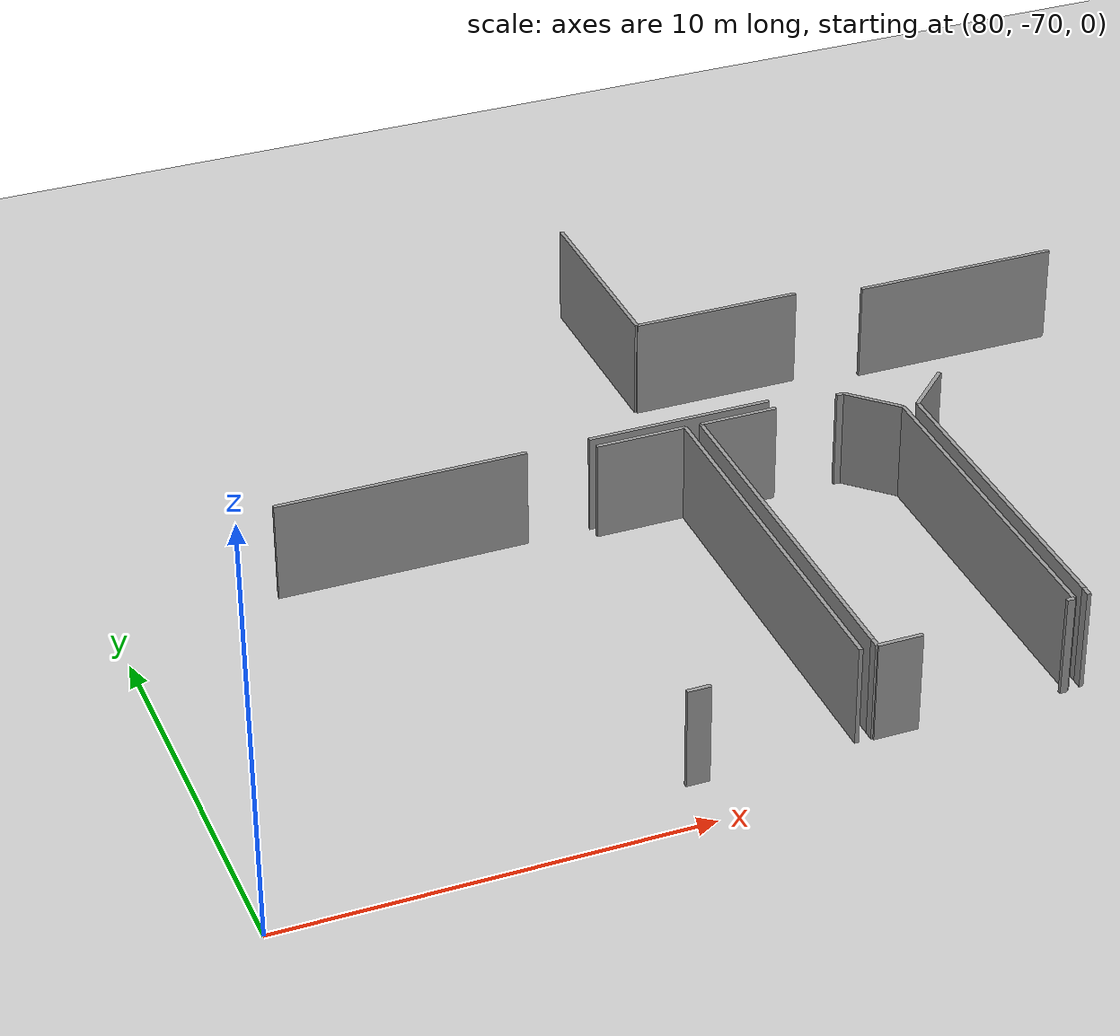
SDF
<sdf version="1.6">
 <world name="default">
  <model name="ground_plane">
   <static>1</static>
   <link name="link">
    <collision name="collision">
     <geometry><plane><normal>0 0 1</normal><size>100 100</size></plane></geometry>
     <surface><friction><ode><mu>100</mu><mu2>50</mu2></ode></friction></surface>
    </collision>
    <visual name="visual">
     <cast_shadows>0</cast_shadows>
     <geometry><plane><normal>0 0 1</normal><size>100 100</size></plane></geometry>
     <material>
      <script><uri>file://media/materials/scripts/gazebo.material</uri><name>Gazebo/Grey</name></script>
     </material>
    </visual>
   </link>
  </model>
  <model name="0510035520_A_40_1_103">
   <static>1</static>
   <link name="Wall_1003">
    <collision name="Wall_1003_Collision">
     <geometry><box><size>2.23805686512 0.1 2.5</size></box></geometry>
     <pose>1.11902843256 0 1.25 0 0 0</pose>
    </collision>
    <visual name="Wall_1003_Visual">
     <pose>1.11902843256 0 1.25 0 0 0</pose>
     <geometry><box><size>2.23805686512 0.1 2.5</size></box></geometry>
     <material>
      <script><uri>file://media/materials/scripts/gazebo.material</uri><name>Gazebo/Grey</name></script>
      <ambient>1 1 1 1</ambient>
     </material>
    </visual>
    <pose>203.845407072 -127.629139409 0 0 0 0.0</pose>
   </link>
   <link name="Wall_1004">
    <collision name="Wall_1004_Collision">
     <geometry><box><size>9.61262936149 0.1 2.5</size></box></geometry>
     <pose>4.80631468074 0 1.25 0 0 0</pose>
    </collision>
    <visual name="Wall_1004_Visual">
     <pose>4.80631468074 0 1.25 0 0 0</pose>
     <geometry><box><size>9.61262936149 0.1 2.5</size></box></geometry>
     <material>
      <script><uri>file://media/materials/scripts/gazebo.material</uri><name>Gazebo/Grey</name></script>
      <ambient>1 1 1 1</ambient>
     </material>
    </visual>
    <pose>206.083463937 -127.629139409 0 0 0 -1.57079632679</pose>
   </link>
   <link name="Wall_1005">
    <collision name="Wall_1005_Collision">
     <geometry><box><size>0.556595453074 0.1 2.5</size></box></geometry>
     <pose>0.278297726537 0 1.25 0 0 0</pose>
    </collision>
    <visual name="Wall_1005_Visual">
     <pose>0.278297726537 0 1.25 0 0 0</pose>
     <geometry><box><size>0.556595453074 0.1 2.5</size></box></geometry>
     <material>
      <script><uri>file://media/materials/scripts/gazebo.material</uri><name>Gazebo/Grey</name></script>
      <ambient>1 1 1 1</ambient>
     </material>
    </visual>
    <pose>202.599222086 -137.241768771 0 0 0 3.14159265359</pose>
   </link>
   <link name="Wall_1007">
    <collision name="Wall_1007_Collision">
     <geometry><box><size>9.35044828396 0.1 2.5</size></box></geometry>
     <pose>4.67522414198 0 1.25 0 0 0</pose>
    </collision>
    <visual name="Wall_1007_Visual">
     <pose>4.67522414198 0 1.25 0 0 0</pose>
     <geometry><box><size>9.35044828396 0.1 2.5</size></box></geometry>
     <material>
      <script><uri>file://media/materials/scripts/gazebo.material</uri><name>Gazebo/Grey</name></script>
      <ambient>1 1 1 1</ambient>
     </material>
    </visual>
    <pose>206.477877678 -136.985171414 0 0 0 1.57079632679</pose>
   </link>
   <link name="Wall_1008">
    <collision name="Wall_1008_Collision">
     <geometry><box><size>1.92029238393 0.1 2.5</size></box></geometry>
     <pose>0.960146191966 0 1.25 0 0 0</pose>
    </collision>
    <visual name="Wall_1008_Visual">
     <pose>0.960146191966 0 1.25 0 0 0</pose>
     <geometry><box><size>1.92029238393 0.1 2.5</size></box></geometry>
     <material>
      <script><uri>file://media/materials/scripts/gazebo.material</uri><name>Gazebo/Grey</name></script>
      <ambient>1 1 1 1</ambient>
     </material>
    </visual>
    <pose>206.477877678 -127.63472313 0 0 0 0.0</pose>
   </link>
   <link name="Wall_1009">
    <collision name="Wall_1009_Collision">
     <geometry><box><size>0.190861733111 0.1 2.5</size></box></geometry>
     <pose>0.0954308665554 0 1.25 0 0 0</pose>
    </collision>
    <visual name="Wall_1009_Visual">
     <pose>0.0954308665554 0 1.25 0 0 0</pose>
     <geometry><box><size>0.190861733111 0.1 2.5</size></box></geometry>
     <material>
      <script><uri>file://media/materials/scripts/gazebo.material</uri><name>Gazebo/Grey</name></script>
      <ambient>1 1 1 1</ambient>
     </material>
    </visual>
    <pose>209.965672807 -127.63472313 0 0 0 0.0</pose>
   </link>
   <link name="Wall_1010">
    <collision name="Wall_1010_Collision">
     <geometry><box><size>1.50196424997 0.1 2.5</size></box></geometry>
     <pose>0.750982124986 0 1.25 0 0 0</pose>
    </collision>
    <visual name="Wall_1010_Visual">
     <pose>0.750982124986 0 1.25 0 0 0</pose>
     <geometry><box><size>1.50196424997 0.1 2.5</size></box></geometry>
     <material>
      <script><uri>file://media/materials/scripts/gazebo.material</uri><name>Gazebo/Grey</name></script>
      <ambient>1 1 1 1</ambient>
     </material>
    </visual>
    <pose>210.15653454 -127.63472313 0 0 0 -0.785517651986</pose>
   </link>
   <link name="Wall_1011">
    <collision name="Wall_1011_Collision">
     <geometry><box><size>8.53395600282 0.1 2.5</size></box></geometry>
     <pose>4.26697800141 0 1.25 0 0 0</pose>
    </collision>
    <visual name="Wall_1011_Visual">
     <pose>4.26697800141 0 1.25 0 0 0</pose>
     <geometry><box><size>8.53395600282 0.1 2.5</size></box></geometry>
     <material>
      <script><uri>file://media/materials/scripts/gazebo.material</uri><name>Gazebo/Grey</name></script>
      <ambient>1 1 1 1</ambient>
     </material>
    </visual>
    <pose>211.218456736 -128.696899131 0 0 0 -1.57079632679</pose>
   </link>
   <link name="Wall_1012">
    <collision name="Wall_1012_Collision">
     <geometry><box><size>0.185278012195 0.1 2.5</size></box></geometry>
     <pose>0.0926390060977 0 1.25 0 0 0</pose>
    </collision>
    <visual name="Wall_1012_Visual">
     <pose>0.0926390060977 0 1.25 0 0 0</pose>
     <geometry><box><size>0.185278012195 0.1 2.5</size></box></geometry>
     <material>
      <script><uri>file://media/materials/scripts/gazebo.material</uri><name>Gazebo/Grey</name></script>
      <ambient>1 1 1 1</ambient>
     </material>
    </visual>
    <pose>211.218456736 -137.230855134 0 0 0 3.14159265359</pose>
   </link>
   <link name="Wall_1013">
    <collision name="Wall_1013_Collision">
     <geometry><box><size>1.0766429147 0.1 2.5</size></box></geometry>
     <pose>0.538321457351 0 1.25 0 0 0</pose>
    </collision>
    <visual name="Wall_1013_Visual">
     <pose>0.538321457351 0 1.25 0 0 0</pose>
     <geometry><box><size>1.0766429147 0.1 2.5</size></box></geometry>
     <material>
      <script><uri>file://media/materials/scripts/gazebo.material</uri><name>Gazebo/Grey</name></script>
      <ambient>1 1 1 1</ambient>
     </material>
    </visual>
    <pose>207.552490149 -137.230855134 0 0 0 3.14159265359</pose>
   </link>
   <link name="Wall_1014">
    <collision name="Wall_1014_Collision">
     <geometry><box><size>0.245692110402 0.1 2.5</size></box></geometry>
     <pose>0.122846055201 0 1.25 0 0 0</pose>
    </collision>
    <visual name="Wall_1014_Visual">
     <pose>0.122846055201 0 1.25 0 0 0</pose>
     <geometry><box><size>0.245692110402 0.1 2.5</size></box></geometry>
     <material>
      <script><uri>file://media/materials/scripts/gazebo.material</uri><name>Gazebo/Grey</name></script>
      <ambient>1 1 1 1</ambient>
     </material>
    </visual>
    <pose>206.475847234 -137.230855134 0 0 0 1.56253205214</pose>
   </link>
   <link name="Wall_1015">
    <collision name="Wall_1015_Collision">
     <geometry><box><size>8.26238412193 0.1 2.5</size></box></geometry>
     <pose>4.13119206096 0 1.25 0 0 0</pose>
    </collision>
    <visual name="Wall_1015_Visual">
     <pose>4.13119206096 0 1.25 0 0 0</pose>
     <geometry><box><size>8.26238412193 0.1 2.5</size></box></geometry>
     <material>
      <script><uri>file://media/materials/scripts/gazebo.material</uri><name>Gazebo/Grey</name></script>
      <ambient>1 1 1 1</ambient>
     </material>
    </visual>
    <pose>211.59688073 -136.955983782 0 0 0 1.57079632679</pose>
   </link>
   <link name="Wall_1016">
    <collision name="Wall_1016_Collision">
     <geometry><box><size>1.53813778152 0.1 2.5</size></box></geometry>
     <pose>0.769068890761 0 1.25 0 0 0</pose>
    </collision>
    <visual name="Wall_1016_Visual">
     <pose>0.769068890761 0 1.25 0 0 0</pose>
     <geometry><box><size>1.53813778152 0.1 2.5</size></box></geometry>
     <material>
      <script><uri>file://media/materials/scripts/gazebo.material</uri><name>Gazebo/Grey</name></script>
      <ambient>1 1 1 1</ambient>
     </material>
    </visual>
    <pose>211.59688073 -128.69359966 0 0 0 0.773963422594</pose>
   </link>
   <link name="Wall_1025">
    <collision name="Wall_1025_Collision">
     <geometry><box><size>0.264769621101 0.1 2.5</size></box></geometry>
     <pose>0.132384810551 0 1.25 0 0 0</pose>
    </collision>
    <visual name="Wall_1025_Visual">
     <pose>0.132384810551 0 1.25 0 0 0</pose>
     <geometry><box><size>0.264769621101 0.1 2.5</size></box></geometry>
     <material>
      <script><uri>file://media/materials/scripts/gazebo.material</uri><name>Gazebo/Grey</name></script>
      <ambient>1 1 1 1</ambient>
     </material>
    </visual>
    <pose>211.584190456 -137.220449109 0 0 0 1.52284845972</pose>
   </link>
   <link name="Wall_1032">
    <collision name="Wall_1032_Collision">
     <geometry><box><size>5.06189681538 0.1 2.5</size></box></geometry>
     <pose>2.53094840769 0 1.25 0 0 0</pose>
    </collision>
    <visual name="Wall_1032_Visual">
     <pose>2.53094840769 0 1.25 0 0 0</pose>
     <geometry><box><size>5.06189681538 0.1 2.5</size></box></geometry>
     <material>
      <script><uri>file://media/materials/scripts/gazebo.material</uri><name>Gazebo/Grey</name></script>
      <ambient>1 1 1 1</ambient>
     </material>
    </visual>
    <pose>206.805286768 -122.877646715 0 0 0 1.57079632679</pose>
   </link>
   <link name="Wall_1038">
    <collision name="Wall_1038_Collision">
     <geometry><box><size>4.25024150983 0.1 2.5</size></box></geometry>
     <pose>2.12512075491 0 1.25 0 0 0</pose>
    </collision>
    <visual name="Wall_1038_Visual">
     <pose>2.12512075491 0 1.25 0 0 0</pose>
     <geometry><box><size>4.25024150983 0.1 2.5</size></box></geometry>
     <material>
      <script><uri>file://media/materials/scripts/gazebo.material</uri><name>Gazebo/Grey</name></script>
      <ambient>1 1 1 1</ambient>
     </material>
    </visual>
    <pose>211.055513607 -122.888814157 0 0 0 3.1389651665</pose>
   </link>
   <link name="Wall_1097">
    <collision name="Wall_1097_Collision">
     <geometry><box><size>5.22077905597 0.1 2.5</size></box></geometry>
     <pose>2.61038952799 0 1.25 0 0 0</pose>
    </collision>
    <visual name="Wall_1097_Visual">
     <pose>2.61038952799 0 1.25 0 0 0</pose>
     <geometry><box><size>5.22077905597 0.1 2.5</size></box></geometry>
     <material>
      <script><uri>file://media/materials/scripts/gazebo.material</uri><name>Gazebo/Grey</name></script>
      <ambient>1 1 1 1</ambient>
     </material>
    </visual>
    <pose>212.675300284 -123.290334452 0 0 0 0.0</pose>
   </link>
   <link name="Wall_1102">
    <collision name="Wall_1102_Collision">
     <geometry><box><size>4.57712831771 0.1 2.5</size></box></geometry>
     <pose>2.28856415886 0 1.25 0 0 0</pose>
    </collision>
    <visual name="Wall_1102_Visual">
     <pose>2.28856415886 0 1.25 0 0 0</pose>
     <geometry><box><size>4.57712831771 0.1 2.5</size></box></geometry>
     <material>
      <script><uri>file://media/materials/scripts/gazebo.material</uri><name>Gazebo/Grey</name></script>
      <ambient>1 1 1 1</ambient>
     </material>
    </visual>
    <pose>208.371012874 -127.280156852 0 0 0 3.14159265359</pose>
   </link>
   <link name="Wall_1103">
    <collision name="Wall_1103_Collision">
     <geometry><box><size>6.13397123115 0.1 2.5</size></box></geometry>
     <pose>3.06698561557 0 1.25 0 0 0</pose>
    </collision>
    <visual name="Wall_1103_Visual">
     <pose>3.06698561557 0 1.25 0 0 0</pose>
     <geometry><box><size>6.13397123115 0.1 2.5</size></box></geometry>
     <material>
      <script><uri>file://media/materials/scripts/gazebo.material</uri><name>Gazebo/Grey</name></script>
      <ambient>1 1 1 1</ambient>
     </material>
    </visual>
    <pose>202.241102531 -127.280156852 0 0 0 3.14159265359</pose>
   </link>
   <pose>-112.2 68.6448144365 0 0 0 0</pose>
  </model>
 </world>
</sdf>
